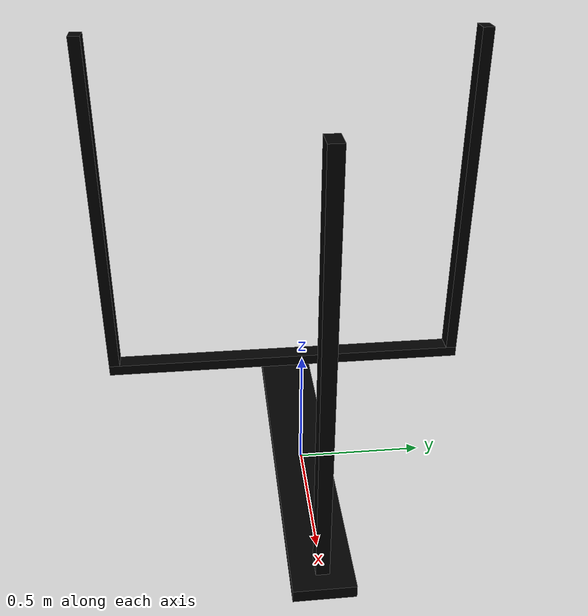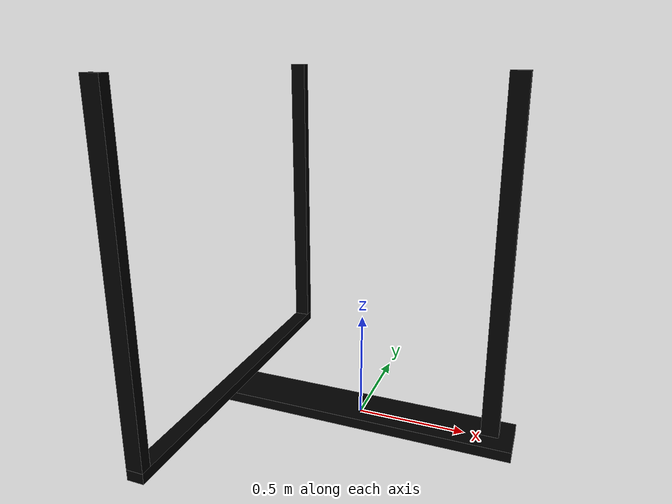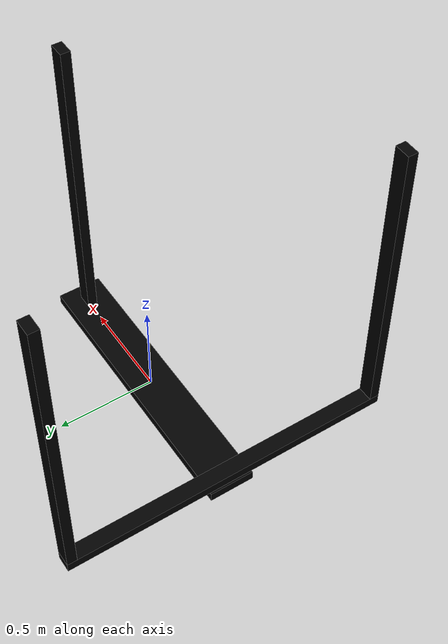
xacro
<?xml version="1.0"?>
<robot name="door_frame" xmlns:xacro="http://ros.org/wiki/xacro" >

    <link name='base_frame_link'>
        <inertial>
            <origin xyz="0 0 0" rpy="0 0 0" />
                <mass value="0.0000001" />
                <inertia
                    ixx="0.00000001"
                    ixy="0"
                    ixz="0"
                    iyy="0.00000001"
                    iyz="0"
                    izz="0.0000001" />
        </inertial>

        <!-- 构建主横梁 -->
        <visual>
            <origin xyz='0.0 0.0 0.0' rpy='0.0 0.0 0.0'/>
            <geometry>
                <box size="1.45 0.228 0.05"/>
            </geometry>
            <material name='black'>
                <color rgba='0.0 0.0 0.0 1'/>
            </material>
        </visual>
        <collision>
            <origin xyz='0.0 0.0 0.0' rpy='0.0 0.0 0.0'/>
            <geometry>
                <box size="1.45 0.228 0.05"/>
            </geometry>
        </collision>

        <!-- 构建前支撑腿 -->
        <visual>
            <origin xyz='0.62 0.0 0.825' rpy='0.0 0.0 0.0'/>
            <geometry>
                <box size="0.08 0.05 1.6"/>
            </geometry>
            <material name='black'>
                <color rgba='0.0 0.0 0.0 1'/>
            </material>
        </visual>
        <collision>
            <origin xyz='0.62 0.0 0.825' rpy='0.0 0.0 0.0'/>
            <geometry>
                <box size="0.08 0.05 1.6"/>
            </geometry>
        </collision>

        <!-- 构建后横梁 -->
        <visual>
            <origin xyz='-0.675 0.0 0.05' rpy='0.0 0.0 0.0'/>
            <geometry>
                <box size="0.08 1.7 0.05"/>
            </geometry>
            <material name='black'>
                <color rgba='0.0 0.0 0.0 1'/>
            </material>
        </visual>
        <collision>
            <origin xyz='-0.675 0.0 0.05' rpy='0.0 0.0 0.0'/>
            <geometry>
                <box size="0.08 1.7 0.05"/>
            </geometry>
        </collision>

        <!-- 构建后支撑腿一 -->
        <visual>
            <origin xyz='-0.675 0.825 0.85' rpy='0.0 0.0 0.0'/>
            <geometry>
                <box size="0.08 0.05 1.55"/>
            </geometry>
            <material name='black'>
                <color rgba='0.0 0.0 0.0 1'/>
            </material>
        </visual>
        <collision>
            <origin xyz='-0.675 0.825 0.85' rpy='0.0 0.0 0.0'/>
            <geometry>
                <box size="0.08 0.05 1.55"/>
            </geometry>
        </collision>

        <!-- 构建后支撑腿二 -->
        <visual>
            <origin xyz='-0.675 -0.825 0.85' rpy='0.0 0.0 0.0'/>
            <geometry>
                <box size="0.08 0.05 1.55"/>
            </geometry>
            <material name='black'>
                <color rgba='0.0 0.0 0.0 1'/>
            </material>
        </visual>
        <collision>
            <origin xyz='-0.675 -0.825 0.85' rpy='0.0 0.0 0.0'/>
            <geometry>
                <box size="0.08 0.05 1.55"/>
            </geometry>
        </collision>

    </link>

</robot>
